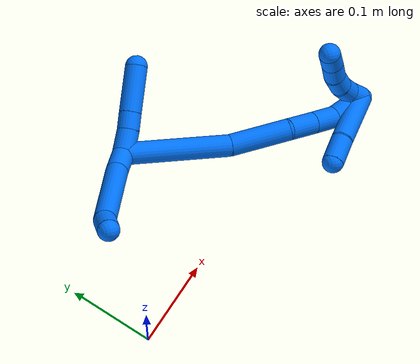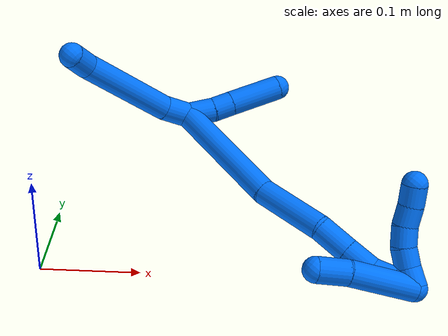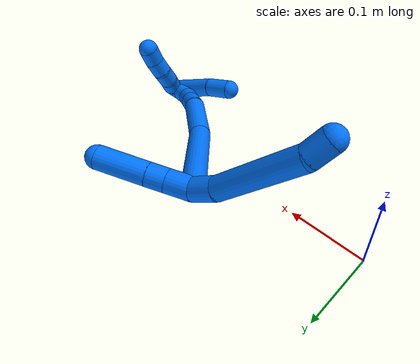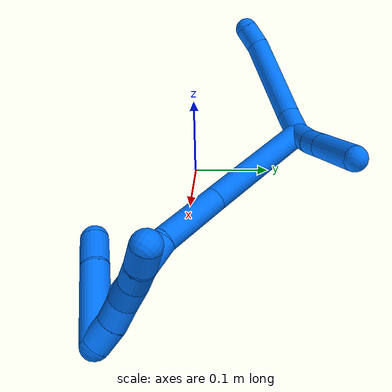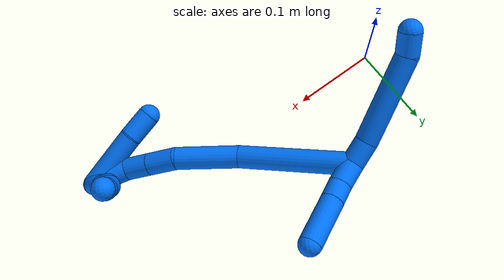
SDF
<sdf version="1.7">
 <world name="default">
  <model name="14">
   <static>0</static>
   <link name="14">
    <collision name="collision-cylinder-e_1_2_8">
     <pose>-0.008984 -0.004036 -0.009875 2.75362 -0.699908 -2.15401</pose>
     <geometry><cylinder><radius>0.0125</radius><length>0.027893</length></cylinder></geometry>
     <surface>
      <friction><ode><mu>1.16</mu><mu2>1.16</mu2><slip1>0</slip1><slip2>0</slip2></ode></friction>
      <contact><ode><kp>1e+06</kp><kd>1</kd><max_vel>0</max_vel><min_depth>0.001</min_depth></ode></contact>
     </surface>
    </collision>
    <visual name="visual-cylinder-e_1_2_8">
     <pose>-0.008984 -0.004036 -0.009875 2.75362 -0.699908 -2.15401</pose>
     <geometry><cylinder><radius>0.0125</radius><length>0.027893</length></cylinder></geometry>
     <material><ambient>0 0.462745 1 1</ambient></material>
    </visual>
    <collision name="collision-cylinder-e_2_8_9">
     <pose>-0.054906 -0.011965 -0.051473 3.01947 -0.857522 -2.87569</pose>
     <geometry><cylinder><radius>0.0125</radius><length>0.097693</length></cylinder></geometry>
     <surface>
      <friction><ode><mu>1.16</mu><mu2>1.16</mu2><slip1>0</slip1><slip2>0</slip2></ode></friction>
      <contact><ode><kp>1e+06</kp><kd>1</kd><max_vel>0</max_vel><min_depth>0.001</min_depth></ode></contact>
     </surface>
    </collision>
    <visual name="visual-cylinder-e_2_8_9">
     <pose>-0.054906 -0.011965 -0.051473 3.01947 -0.857522 -2.87569</pose>
     <geometry><cylinder><radius>0.0125</radius><length>0.097693</length></cylinder></geometry>
     <material><ambient>0 0.462745 1 1</ambient></material>
    </visual>
    <collision name="collision-cylinder-e_3_9_6">
     <pose>-0.103014 -0.015061 -0.088057 -2.97913 -1.15543 2.89312</pose>
     <geometry><cylinder><radius>0.0125</radius><length>0.024413</length></cylinder></geometry>
     <surface>
      <friction><ode><mu>1.16</mu><mu2>1.16</mu2><slip1>0</slip1><slip2>0</slip2></ode></friction>
      <contact><ode><kp>1e+06</kp><kd>1</kd><max_vel>0</max_vel><min_depth>0.001</min_depth></ode></contact>
     </surface>
    </collision>
    <visual name="visual-cylinder-e_3_9_6">
     <pose>-0.103014 -0.015061 -0.088057 -2.97913 -1.15543 2.89312</pose>
     <geometry><cylinder><radius>0.0125</radius><length>0.024413</length></cylinder></geometry>
     <material><ambient>0 0.462745 1 1</ambient></material>
    </visual>
    <collision name="collision-cylinder-e_1_2_10">
     <pose>0.006308 0.00971 0.006968 -0.948351 0.485663 -0.252918</pose>
     <geometry><cylinder><radius>0.0125</radius><length>0.027028</length></cylinder></geometry>
     <surface>
      <friction><ode><mu>1.16</mu><mu2>1.16</mu2><slip1>0</slip1><slip2>0</slip2></ode></friction>
      <contact><ode><kp>1e+06</kp><kd>1</kd><max_vel>0</max_vel><min_depth>0.001</min_depth></ode></contact>
     </surface>
    </collision>
    <visual name="visual-cylinder-e_1_2_10">
     <pose>0.006308 0.00971 0.006968 -0.948351 0.485663 -0.252918</pose>
     <geometry><cylinder><radius>0.0125</radius><length>0.027028</length></cylinder></geometry>
     <material><ambient>0 0.462745 1 1</ambient></material>
    </visual>
    <collision name="collision-cylinder-e_2_10_11">
     <pose>0.017184 0.027413 0.017973 -1.10312 0.471647 -0.293557</pose>
     <geometry><cylinder><radius>0.0125</radius><length>0.020105</length></cylinder></geometry>
     <surface>
      <friction><ode><mu>1.16</mu><mu2>1.16</mu2><slip1>0</slip1><slip2>0</slip2></ode></friction>
      <contact><ode><kp>1e+06</kp><kd>1</kd><max_vel>0</max_vel><min_depth>0.001</min_depth></ode></contact>
     </surface>
    </collision>
    <visual name="visual-cylinder-e_2_10_11">
     <pose>0.017184 0.027413 0.017973 -1.10312 0.471647 -0.293557</pose>
     <geometry><cylinder><radius>0.0125</radius><length>0.020105</length></cylinder></geometry>
     <material><ambient>0 0.462745 1 1</ambient></material>
    </visual>
    <collision name="collision-cylinder-e_3_11_5">
     <pose>0.033596 0.05633 0.032994 -1.08736 0.464648 -0.284091</pose>
     <geometry><cylinder><radius>0.0125</radius><length>0.052867</length></cylinder></geometry>
     <surface>
      <friction><ode><mu>1.16</mu><mu2>1.16</mu2><slip1>0</slip1><slip2>0</slip2></ode></friction>
      <contact><ode><kp>1e+06</kp><kd>1</kd><max_vel>0</max_vel><min_depth>0.001</min_depth></ode></contact>
     </surface>
    </collision>
    <visual name="visual-cylinder-e_3_11_5">
     <pose>0.033596 0.05633 0.032994 -1.08736 0.464648 -0.284091</pose>
     <geometry><cylinder><radius>0.0125</radius><length>0.052867</length></cylinder></geometry>
     <material><ambient>0 0.462745 1 1</ambient></material>
    </visual>
    <collision name="collision-cylinder-e_1_2_12">
     <pose>-0.01754 -0.002203 0.059584 0.036964 -0.286109 -0.005325</pose>
     <geometry><cylinder><radius>0.0125</radius><length>0.124302</length></cylinder></geometry>
     <surface>
      <friction><ode><mu>1.16</mu><mu2>1.16</mu2><slip1>0</slip1><slip2>0</slip2></ode></friction>
      <contact><ode><kp>1e+06</kp><kd>1</kd><max_vel>0</max_vel><min_depth>0.001</min_depth></ode></contact>
     </surface>
    </collision>
    <visual name="visual-cylinder-e_1_2_12">
     <pose>-0.01754 -0.002203 0.059584 0.036964 -0.286109 -0.005325</pose>
     <geometry><cylinder><radius>0.0125</radius><length>0.124302</length></cylinder></geometry>
     <material><ambient>0 0.462745 1 1</ambient></material>
    </visual>
    <collision name="collision-cylinder-e_2_12_13">
     <pose>-0.044343 0.001248 0.152866 -0.166273 -0.264697 0.022186</pose>
     <geometry><cylinder><radius>0.0125</radius><length>0.070806</length></cylinder></geometry>
     <surface>
      <friction><ode><mu>1.16</mu><mu2>1.16</mu2><slip1>0</slip1><slip2>0</slip2></ode></friction>
      <contact><ode><kp>1e+06</kp><kd>1</kd><max_vel>0</max_vel><min_depth>0.001</min_depth></ode></contact>
     </surface>
    </collision>
    <visual name="visual-cylinder-e_2_12_13">
     <pose>-0.044343 0.001248 0.152866 -0.166273 -0.264697 0.022186</pose>
     <geometry><cylinder><radius>0.0125</radius><length>0.070806</length></cylinder></geometry>
     <material><ambient>0 0.462745 1 1</ambient></material>
    </visual>
    <collision name="collision-cylinder-e_3_13_14">
     <pose>-0.054154 0.00706 0.203271 -0.009358 -0.03286 0.000154</pose>
     <geometry><cylinder><radius>0.0125</radius><length>0.033431</length></cylinder></geometry>
     <surface>
      <friction><ode><mu>1.16</mu><mu2>1.16</mu2><slip1>0</slip1><slip2>0</slip2></ode></friction>
      <contact><ode><kp>1e+06</kp><kd>1</kd><max_vel>0</max_vel><min_depth>0.001</min_depth></ode></contact>
     </surface>
    </collision>
    <visual name="visual-cylinder-e_3_13_14">
     <pose>-0.054154 0.00706 0.203271 -0.009358 -0.03286 0.000154</pose>
     <geometry><cylinder><radius>0.0125</radius><length>0.033431</length></cylinder></geometry>
     <material><ambient>0 0.462745 1 1</ambient></material>
    </visual>
    <collision name="collision-cylinder-e_4_14_15">
     <pose>-0.055214 0.007599 0.234542 -0.026246 -0.035029 0.00046</pose>
     <geometry><cylinder><radius>0.0125</radius><length>0.029158</length></cylinder></geometry>
     <surface>
      <friction><ode><mu>1.16</mu><mu2>1.16</mu2><slip1>0</slip1><slip2>0</slip2></ode></friction>
      <contact><ode><kp>1e+06</kp><kd>1</kd><max_vel>0</max_vel><min_depth>0.001</min_depth></ode></contact>
     </surface>
    </collision>
    <visual name="visual-cylinder-e_4_14_15">
     <pose>-0.055214 0.007599 0.234542 -0.026246 -0.035029 0.00046</pose>
     <geometry><cylinder><radius>0.0125</radius><length>0.029158</length></cylinder></geometry>
     <material><ambient>0 0.462745 1 1</ambient></material>
    </visual>
    <collision name="collision-cylinder-e_5_15_16">
     <pose>-0.054979 0.011237 0.25905 -0.316397 0.071091 -0.011346</pose>
     <geometry><cylinder><radius>0.0125</radius><length>0.020979</length></cylinder></geometry>
     <surface>
      <friction><ode><mu>1.16</mu><mu2>1.16</mu2><slip1>0</slip1><slip2>0</slip2></ode></friction>
      <contact><ode><kp>1e+06</kp><kd>1</kd><max_vel>0</max_vel><min_depth>0.001</min_depth></ode></contact>
     </surface>
    </collision>
    <visual name="visual-cylinder-e_5_15_16">
     <pose>-0.054979 0.011237 0.25905 -0.316397 0.071091 -0.011346</pose>
     <geometry><cylinder><radius>0.0125</radius><length>0.020979</length></cylinder></geometry>
     <material><ambient>0 0.462745 1 1</ambient></material>
    </visual>
    <collision name="collision-cylinder-e_6_16_1">
     <pose>-0.052857 0.017475 0.279137 -0.285977 0.129512 -0.018672</pose>
     <geometry><cylinder><radius>0.0125</radius><length>0.021324</length></cylinder></geometry>
     <surface>
      <friction><ode><mu>1.16</mu><mu2>1.16</mu2><slip1>0</slip1><slip2>0</slip2></ode></friction>
      <contact><ode><kp>1e+06</kp><kd>1</kd><max_vel>0</max_vel><min_depth>0.001</min_depth></ode></contact>
     </surface>
    </collision>
    <visual name="visual-cylinder-e_6_16_1">
     <pose>-0.052857 0.017475 0.279137 -0.285977 0.129512 -0.018672</pose>
     <geometry><cylinder><radius>0.0125</radius><length>0.021324</length></cylinder></geometry>
     <material><ambient>0 0.462745 1 1</ambient></material>
    </visual>
    <collision name="collision-cylinder-e_1_1_17">
     <pose>-0.051006 0.02579 0.280834 -2.57846 0.047406 -0.163558</pose>
     <geometry><cylinder><radius>0.0125</radius><length>0.02</length></cylinder></geometry>
     <surface>
      <friction><ode><mu>1.16</mu><mu2>1.16</mu2><slip1>0</slip1><slip2>0</slip2></ode></friction>
      <contact><ode><kp>1e+06</kp><kd>1</kd><max_vel>0</max_vel><min_depth>0.001</min_depth></ode></contact>
     </surface>
    </collision>
    <visual name="visual-cylinder-e_1_1_17">
     <pose>-0.051006 0.02579 0.280834 -2.57846 0.047406 -0.163558</pose>
     <geometry><cylinder><radius>0.0125</radius><length>0.02</length></cylinder></geometry>
     <material><ambient>0 0.462745 1 1</ambient></material>
    </visual>
    <collision name="collision-cylinder-e_2_17_18">
     <pose>-0.051922 0.037438 0.264761 -2.44994 -0.139428 0.382856</pose>
     <geometry><cylinder><radius>0.0125</radius><length>0.02</length></cylinder></geometry>
     <surface>
      <friction><ode><mu>1.16</mu><mu2>1.16</mu2><slip1>0</slip1><slip2>0</slip2></ode></friction>
      <contact><ode><kp>1e+06</kp><kd>1</kd><max_vel>0</max_vel><min_depth>0.001</min_depth></ode></contact>
     </surface>
    </collision>
    <visual name="visual-cylinder-e_2_17_18">
     <pose>-0.051922 0.037438 0.264761 -2.44994 -0.139428 0.382856</pose>
     <geometry><cylinder><radius>0.0125</radius><length>0.02</length></cylinder></geometry>
     <material><ambient>0 0.462745 1 1</ambient></material>
    </visual>
    <collision name="collision-cylinder-e_3_18_19">
     <pose>-0.054339 0.051888 0.251408 -2.18416 -0.102865 0.197734</pose>
     <geometry><cylinder><radius>0.0125</radius><length>0.02</length></cylinder></geometry>
     <surface>
      <friction><ode><mu>1.16</mu><mu2>1.16</mu2><slip1>0</slip1><slip2>0</slip2></ode></friction>
      <contact><ode><kp>1e+06</kp><kd>1</kd><max_vel>0</max_vel><min_depth>0.001</min_depth></ode></contact>
     </surface>
    </collision>
    <visual name="visual-cylinder-e_3_18_19">
     <pose>-0.054339 0.051888 0.251408 -2.18416 -0.102865 0.197734</pose>
     <geometry><cylinder><radius>0.0125</radius><length>0.02</length></cylinder></geometry>
     <material><ambient>0 0.462745 1 1</ambient></material>
    </visual>
    <collision name="collision-cylinder-e_4_19_20">
     <pose>-0.056998 0.069158 0.241958 -1.95788 -0.164028 0.243339</pose>
     <geometry><cylinder><radius>0.0125</radius><length>0.02</length></cylinder></geometry>
     <surface>
      <friction><ode><mu>1.16</mu><mu2>1.16</mu2><slip1>0</slip1><slip2>0</slip2></ode></friction>
      <contact><ode><kp>1e+06</kp><kd>1</kd><max_vel>0</max_vel><min_depth>0.001</min_depth></ode></contact>
     </surface>
    </collision>
    <visual name="visual-cylinder-e_4_19_20">
     <pose>-0.056998 0.069158 0.241958 -1.95788 -0.164028 0.243339</pose>
     <geometry><cylinder><radius>0.0125</radius><length>0.02</length></cylinder></geometry>
     <material><ambient>0 0.462745 1 1</ambient></material>
    </visual>
    <collision name="collision-cylinder-e_5_20_4">
     <pose>-0.061244 0.086808 0.233685 -2.06145 -0.26432 0.436405</pose>
     <geometry><cylinder><radius>0.0125</radius><length>0.02</length></cylinder></geometry>
     <surface>
      <friction><ode><mu>1.16</mu><mu2>1.16</mu2><slip1>0</slip1><slip2>0</slip2></ode></friction>
      <contact><ode><kp>1e+06</kp><kd>1</kd><max_vel>0</max_vel><min_depth>0.001</min_depth></ode></contact>
     </surface>
    </collision>
    <visual name="visual-cylinder-e_5_20_4">
     <pose>-0.061244 0.086808 0.233685 -2.06145 -0.26432 0.436405</pose>
     <geometry><cylinder><radius>0.0125</radius><length>0.02</length></cylinder></geometry>
     <material><ambient>0 0.462745 1 1</ambient></material>
    </visual>
    <collision name="collision-cylinder-e_1_1_21">
     <pose>-0.069892 0.008603 0.262936 2.71875 -0.567433 -1.87253</pose>
     <geometry><cylinder><radius>0.0125</radius><length>0.068515</length></cylinder></geometry>
     <surface>
      <friction><ode><mu>1.16</mu><mu2>1.16</mu2><slip1>0</slip1><slip2>0</slip2></ode></friction>
      <contact><ode><kp>1e+06</kp><kd>1</kd><max_vel>0</max_vel><min_depth>0.001</min_depth></ode></contact>
     </surface>
    </collision>
    <visual name="visual-cylinder-e_1_1_21">
     <pose>-0.069892 0.008603 0.262936 2.71875 -0.567433 -1.87253</pose>
     <geometry><cylinder><radius>0.0125</radius><length>0.068515</length></cylinder></geometry>
     <material><ambient>0 0.462745 1 1</ambient></material>
    </visual>
    <collision name="collision-cylinder-e_2_21_3">
     <pose>-0.096009 -0.010814 0.225133 2.55825 -0.511388 -1.4328</pose>
     <geometry><cylinder><radius>0.0125</radius><length>0.031485</length></cylinder></geometry>
     <surface>
      <friction><ode><mu>1.16</mu><mu2>1.16</mu2><slip1>0</slip1><slip2>0</slip2></ode></friction>
      <contact><ode><kp>1e+06</kp><kd>1</kd><max_vel>0</max_vel><min_depth>0.001</min_depth></ode></contact>
     </surface>
    </collision>
    <visual name="visual-cylinder-e_2_21_3">
     <pose>-0.096009 -0.010814 0.225133 2.55825 -0.511388 -1.4328</pose>
     <geometry><cylinder><radius>0.0125</radius><length>0.031485</length></cylinder></geometry>
     <material><ambient>0 0.462745 1 1</ambient></material>
    </visual>
    <collision name="collision-sphere-3">
     <pose>-0.103713 -0.018375 0.213675 0 -0 0</pose>
     <geometry><sphere><radius>0.0125</radius></sphere></geometry>
     <surface>
      <friction><ode><mu>1.16</mu><mu2>1.16</mu2><slip1>0</slip1><slip2>0</slip2></ode></friction>
      <contact><ode><kp>1e+06</kp><kd>1</kd><max_vel>0</max_vel><min_depth>0.001</min_depth></ode></contact>
     </surface>
    </collision>
    <visual name="visual-sphere-3">
     <pose>-0.103713 -0.018375 0.213675 0 -0 0</pose>
     <geometry><sphere><radius>0.0125</radius></sphere></geometry>
     <material><ambient>0 0.462745 1 1</ambient></material>
    </visual>
    <collision name="collision-sphere-21">
     <pose>-0.088305 -0.003252 0.236591 0 -0 0</pose>
     <geometry><sphere><radius>0.0125</radius></sphere></geometry>
     <surface>
      <friction><ode><mu>1.16</mu><mu2>1.16</mu2><slip1>0</slip1><slip2>0</slip2></ode></friction>
      <contact><ode><kp>1e+06</kp><kd>1</kd><max_vel>0</max_vel><min_depth>0.001</min_depth></ode></contact>
     </surface>
    </collision>
    <visual name="visual-sphere-21">
     <pose>-0.088305 -0.003252 0.236591 0 -0 0</pose>
     <geometry><sphere><radius>0.0125</radius></sphere></geometry>
     <material><ambient>0 0.462745 1 1</ambient></material>
    </visual>
    <collision name="collision-sphere-4">
     <pose>-0.063856 0.095322 0.229137 0 -0 0</pose>
     <geometry><sphere><radius>0.0125</radius></sphere></geometry>
     <surface>
      <friction><ode><mu>1.16</mu><mu2>1.16</mu2><slip1>0</slip1><slip2>0</slip2></ode></friction>
      <contact><ode><kp>1e+06</kp><kd>1</kd><max_vel>0</max_vel><min_depth>0.001</min_depth></ode></contact>
     </surface>
    </collision>
    <visual name="visual-sphere-4">
     <pose>-0.063856 0.095322 0.229137 0 -0 0</pose>
     <geometry><sphere><radius>0.0125</radius></sphere></geometry>
     <material><ambient>0 0.462745 1 1</ambient></material>
    </visual>
    <collision name="collision-sphere-20">
     <pose>-0.058631 0.078294 0.238233 0 -0 0</pose>
     <geometry><sphere><radius>0.0125</radius></sphere></geometry>
     <surface>
      <friction><ode><mu>1.16</mu><mu2>1.16</mu2><slip1>0</slip1><slip2>0</slip2></ode></friction>
      <contact><ode><kp>1e+06</kp><kd>1</kd><max_vel>0</max_vel><min_depth>0.001</min_depth></ode></contact>
     </surface>
    </collision>
    <visual name="visual-sphere-20">
     <pose>-0.058631 0.078294 0.238233 0 -0 0</pose>
     <geometry><sphere><radius>0.0125</radius></sphere></geometry>
     <material><ambient>0 0.462745 1 1</ambient></material>
    </visual>
    <collision name="collision-sphere-11">
     <pose>0.021751 0.035407 0.02201 0 -0 0</pose>
     <geometry><sphere><radius>0.0125</radius></sphere></geometry>
     <surface>
      <friction><ode><mu>1.16</mu><mu2>1.16</mu2><slip1>0</slip1><slip2>0</slip2></ode></friction>
      <contact><ode><kp>1e+06</kp><kd>1</kd><max_vel>0</max_vel><min_depth>0.001</min_depth></ode></contact>
     </surface>
    </collision>
    <visual name="visual-sphere-11">
     <pose>0.021751 0.035407 0.02201 0 -0 0</pose>
     <geometry><sphere><radius>0.0125</radius></sphere></geometry>
     <material><ambient>0 0.462745 1 1</ambient></material>
    </visual>
    <collision name="collision-sphere-10">
     <pose>0.012617 0.01942 0.013936 0 -0 0</pose>
     <geometry><sphere><radius>0.0125</radius></sphere></geometry>
     <surface>
      <friction><ode><mu>1.16</mu><mu2>1.16</mu2><slip1>0</slip1><slip2>0</slip2></ode></friction>
      <contact><ode><kp>1e+06</kp><kd>1</kd><max_vel>0</max_vel><min_depth>0.001</min_depth></ode></contact>
     </surface>
    </collision>
    <visual name="visual-sphere-10">
     <pose>0.012617 0.01942 0.013936 0 -0 0</pose>
     <geometry><sphere><radius>0.0125</radius></sphere></geometry>
     <material><ambient>0 0.462745 1 1</ambient></material>
    </visual>
    <collision name="collision-sphere-6">
     <pose>-0.114183 -0.014265 -0.092918 0 -0 0</pose>
     <geometry><sphere><radius>0.0125</radius></sphere></geometry>
     <surface>
      <friction><ode><mu>1.16</mu><mu2>1.16</mu2><slip1>0</slip1><slip2>0</slip2></ode></friction>
      <contact><ode><kp>1e+06</kp><kd>1</kd><max_vel>0</max_vel><min_depth>0.001</min_depth></ode></contact>
     </surface>
    </collision>
    <visual name="visual-sphere-6">
     <pose>-0.114183 -0.014265 -0.092918 0 -0 0</pose>
     <geometry><sphere><radius>0.0125</radius></sphere></geometry>
     <material><ambient>0 0.462745 1 1</ambient></material>
    </visual>
    <collision name="collision-sphere-9">
     <pose>-0.091845 -0.015858 -0.083196 0 -0 0</pose>
     <geometry><sphere><radius>0.0125</radius></sphere></geometry>
     <surface>
      <friction><ode><mu>1.16</mu><mu2>1.16</mu2><slip1>0</slip1><slip2>0</slip2></ode></friction>
      <contact><ode><kp>1e+06</kp><kd>1</kd><max_vel>0</max_vel><min_depth>0.001</min_depth></ode></contact>
     </surface>
    </collision>
    <visual name="visual-sphere-9">
     <pose>-0.091845 -0.015858 -0.083196 0 -0 0</pose>
     <geometry><sphere><radius>0.0125</radius></sphere></geometry>
     <material><ambient>0 0.462745 1 1</ambient></material>
    </visual>
    <collision name="collision-sphere-2">
     <geometry><sphere><radius>0.0125</radius></sphere></geometry>
     <surface>
      <friction><ode><mu>1.16</mu><mu2>1.16</mu2><slip1>0</slip1><slip2>0</slip2></ode></friction>
      <contact><ode><kp>1e+06</kp><kd>1</kd><max_vel>0</max_vel><min_depth>0.001</min_depth></ode></contact>
     </surface>
    </collision>
    <visual name="visual-sphere-2">
     <geometry><sphere><radius>0.0125</radius></sphere></geometry>
     <material><ambient>0 0.462745 1 1</ambient></material>
    </visual>
    <collision name="collision-sphere-19">
     <pose>-0.055365 0.060022 0.245682 0 -0 0</pose>
     <geometry><sphere><radius>0.0125</radius></sphere></geometry>
     <surface>
      <friction><ode><mu>1.16</mu><mu2>1.16</mu2><slip1>0</slip1><slip2>0</slip2></ode></friction>
      <contact><ode><kp>1e+06</kp><kd>1</kd><max_vel>0</max_vel><min_depth>0.001</min_depth></ode></contact>
     </surface>
    </collision>
    <visual name="visual-sphere-19">
     <pose>-0.055365 0.060022 0.245682 0 -0 0</pose>
     <geometry><sphere><radius>0.0125</radius></sphere></geometry>
     <material><ambient>0 0.462745 1 1</ambient></material>
    </visual>
    <collision name="collision-sphere-8">
     <pose>-0.017967 -0.008071 -0.01975 0 -0 0</pose>
     <geometry><sphere><radius>0.0125</radius></sphere></geometry>
     <surface>
      <friction><ode><mu>1.16</mu><mu2>1.16</mu2><slip1>0</slip1><slip2>0</slip2></ode></friction>
      <contact><ode><kp>1e+06</kp><kd>1</kd><max_vel>0</max_vel><min_depth>0.001</min_depth></ode></contact>
     </surface>
    </collision>
    <visual name="visual-sphere-8">
     <pose>-0.017967 -0.008071 -0.01975 0 -0 0</pose>
     <geometry><sphere><radius>0.0125</radius></sphere></geometry>
     <material><ambient>0 0.462745 1 1</ambient></material>
    </visual>
    <collision name="collision-sphere-5">
     <pose>0.045441 0.077252 0.043979 0 -0 0</pose>
     <geometry><sphere><radius>0.0125</radius></sphere></geometry>
     <surface>
      <friction><ode><mu>1.16</mu><mu2>1.16</mu2><slip1>0</slip1><slip2>0</slip2></ode></friction>
      <contact><ode><kp>1e+06</kp><kd>1</kd><max_vel>0</max_vel><min_depth>0.001</min_depth></ode></contact>
     </surface>
    </collision>
    <visual name="visual-sphere-5">
     <pose>0.045441 0.077252 0.043979 0 -0 0</pose>
     <geometry><sphere><radius>0.0125</radius></sphere></geometry>
     <material><ambient>0 0.462745 1 1</ambient></material>
    </visual>
    <collision name="collision-sphere-12">
     <pose>-0.035081 -0.004407 0.119167 0 -0 0</pose>
     <geometry><sphere><radius>0.0125</radius></sphere></geometry>
     <surface>
      <friction><ode><mu>1.16</mu><mu2>1.16</mu2><slip1>0</slip1><slip2>0</slip2></ode></friction>
      <contact><ode><kp>1e+06</kp><kd>1</kd><max_vel>0</max_vel><min_depth>0.001</min_depth></ode></contact>
     </surface>
    </collision>
    <visual name="visual-sphere-12">
     <pose>-0.035081 -0.004407 0.119167 0 -0 0</pose>
     <geometry><sphere><radius>0.0125</radius></sphere></geometry>
     <material><ambient>0 0.462745 1 1</ambient></material>
    </visual>
    <collision name="collision-sphere-13">
     <pose>-0.053605 0.006904 0.186565 0 -0 0</pose>
     <geometry><sphere><radius>0.0125</radius></sphere></geometry>
     <surface>
      <friction><ode><mu>1.16</mu><mu2>1.16</mu2><slip1>0</slip1><slip2>0</slip2></ode></friction>
      <contact><ode><kp>1e+06</kp><kd>1</kd><max_vel>0</max_vel><min_depth>0.001</min_depth></ode></contact>
     </surface>
    </collision>
    <visual name="visual-sphere-13">
     <pose>-0.053605 0.006904 0.186565 0 -0 0</pose>
     <geometry><sphere><radius>0.0125</radius></sphere></geometry>
     <material><ambient>0 0.462745 1 1</ambient></material>
    </visual>
    <collision name="collision-sphere-14">
     <pose>-0.054703 0.007217 0.219977 0 -0 0</pose>
     <geometry><sphere><radius>0.0125</radius></sphere></geometry>
     <surface>
      <friction><ode><mu>1.16</mu><mu2>1.16</mu2><slip1>0</slip1><slip2>0</slip2></ode></friction>
      <contact><ode><kp>1e+06</kp><kd>1</kd><max_vel>0</max_vel><min_depth>0.001</min_depth></ode></contact>
     </surface>
    </collision>
    <visual name="visual-sphere-14">
     <pose>-0.054703 0.007217 0.219977 0 -0 0</pose>
     <geometry><sphere><radius>0.0125</radius></sphere></geometry>
     <material><ambient>0 0.462745 1 1</ambient></material>
    </visual>
    <collision name="collision-sphere-15">
     <pose>-0.055724 0.007981 0.249107 0 -0 0</pose>
     <geometry><sphere><radius>0.0125</radius></sphere></geometry>
     <surface>
      <friction><ode><mu>1.16</mu><mu2>1.16</mu2><slip1>0</slip1><slip2>0</slip2></ode></friction>
      <contact><ode><kp>1e+06</kp><kd>1</kd><max_vel>0</max_vel><min_depth>0.001</min_depth></ode></contact>
     </surface>
    </collision>
    <visual name="visual-sphere-15">
     <pose>-0.055724 0.007981 0.249107 0 -0 0</pose>
     <geometry><sphere><radius>0.0125</radius></sphere></geometry>
     <material><ambient>0 0.462745 1 1</ambient></material>
    </visual>
    <collision name="collision-sphere-16">
     <pose>-0.054234 0.014492 0.268994 0 -0 0</pose>
     <geometry><sphere><radius>0.0125</radius></sphere></geometry>
     <surface>
      <friction><ode><mu>1.16</mu><mu2>1.16</mu2><slip1>0</slip1><slip2>0</slip2></ode></friction>
      <contact><ode><kp>1e+06</kp><kd>1</kd><max_vel>0</max_vel><min_depth>0.001</min_depth></ode></contact>
     </surface>
    </collision>
    <visual name="visual-sphere-16">
     <pose>-0.054234 0.014492 0.268994 0 -0 0</pose>
     <geometry><sphere><radius>0.0125</radius></sphere></geometry>
     <material><ambient>0 0.462745 1 1</ambient></material>
    </visual>
    <collision name="collision-sphere-1">
     <pose>-0.05148 0.020457 0.289281 0 -0 0</pose>
     <geometry><sphere><radius>0.0125</radius></sphere></geometry>
     <surface>
      <friction><ode><mu>1.16</mu><mu2>1.16</mu2><slip1>0</slip1><slip2>0</slip2></ode></friction>
      <contact><ode><kp>1e+06</kp><kd>1</kd><max_vel>0</max_vel><min_depth>0.001</min_depth></ode></contact>
     </surface>
    </collision>
    <visual name="visual-sphere-1">
     <pose>-0.05148 0.020457 0.289281 0 -0 0</pose>
     <geometry><sphere><radius>0.0125</radius></sphere></geometry>
     <material><ambient>0 0.462745 1 1</ambient></material>
    </visual>
    <collision name="collision-sphere-18">
     <pose>-0.053312 0.043754 0.257133 0 -0 0</pose>
     <geometry><sphere><radius>0.0125</radius></sphere></geometry>
     <surface>
      <friction><ode><mu>1.16</mu><mu2>1.16</mu2><slip1>0</slip1><slip2>0</slip2></ode></friction>
      <contact><ode><kp>1e+06</kp><kd>1</kd><max_vel>0</max_vel><min_depth>0.001</min_depth></ode></contact>
     </surface>
    </collision>
    <visual name="visual-sphere-18">
     <pose>-0.053312 0.043754 0.257133 0 -0 0</pose>
     <geometry><sphere><radius>0.0125</radius></sphere></geometry>
     <material><ambient>0 0.462745 1 1</ambient></material>
    </visual>
    <collision name="collision-sphere-17">
     <pose>-0.050532 0.031122 0.272388 0 -0 0</pose>
     <geometry><sphere><radius>0.0125</radius></sphere></geometry>
     <surface>
      <friction><ode><mu>1.16</mu><mu2>1.16</mu2><slip1>0</slip1><slip2>0</slip2></ode></friction>
      <contact><ode><kp>1e+06</kp><kd>1</kd><max_vel>0</max_vel><min_depth>0.001</min_depth></ode></contact>
     </surface>
    </collision>
    <visual name="visual-sphere-17">
     <pose>-0.050532 0.031122 0.272388 0 -0 0</pose>
     <geometry><sphere><radius>0.0125</radius></sphere></geometry>
     <material><ambient>0 0.462745 1 1</ambient></material>
    </visual>
    <inertial>
     <pose>-0.04024 0.011591 0.118197 0 -0 0</pose>
     <mass>0.75</mass>
     <inertia>
      <ixx>0.000102</ixx>
      <ixy>0</ixy>
      <ixz>0</ixz>
      <iyy>0.000277</iyy>
      <iyz>0</iyz>
      <izz>0.000138</izz>
     </inertia>
    </inertial>
   </link>
   <pose>0.137519 0.121503 0.112692 2.0963 0.570345 1.32609</pose>
  </model>
 </world>
</sdf>
